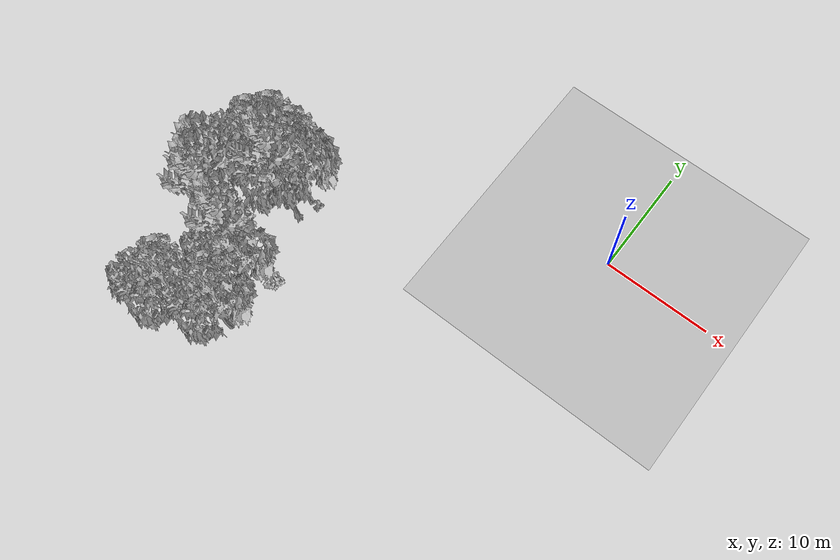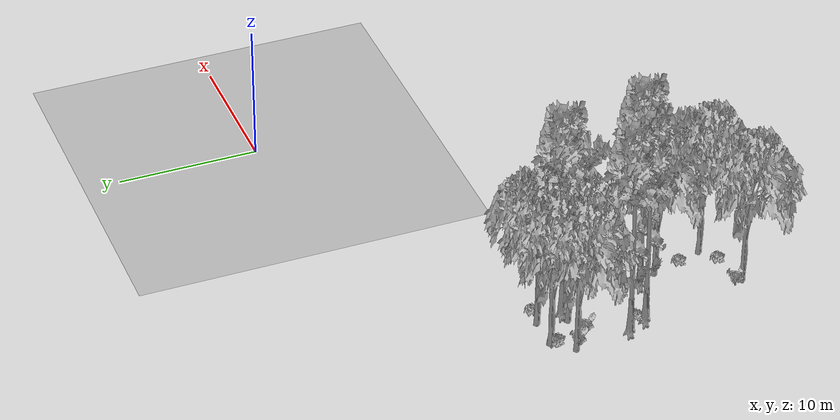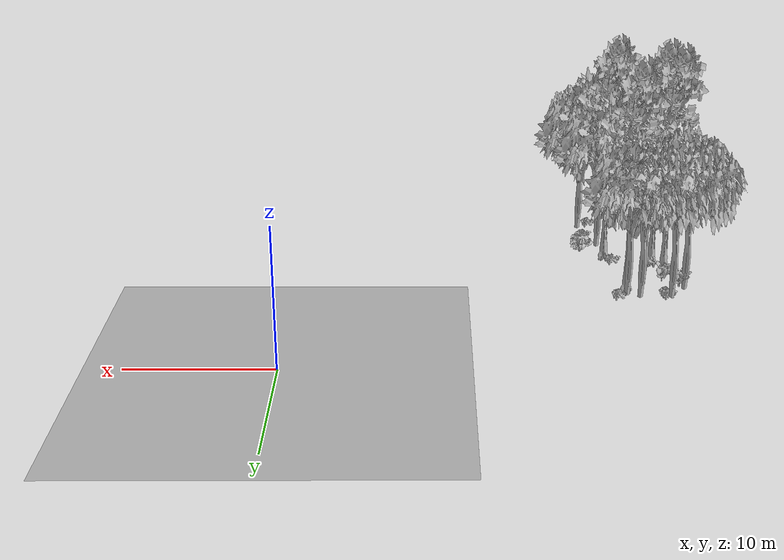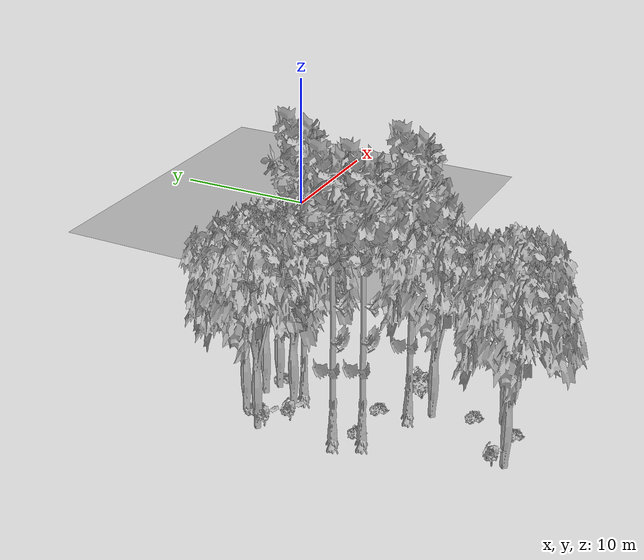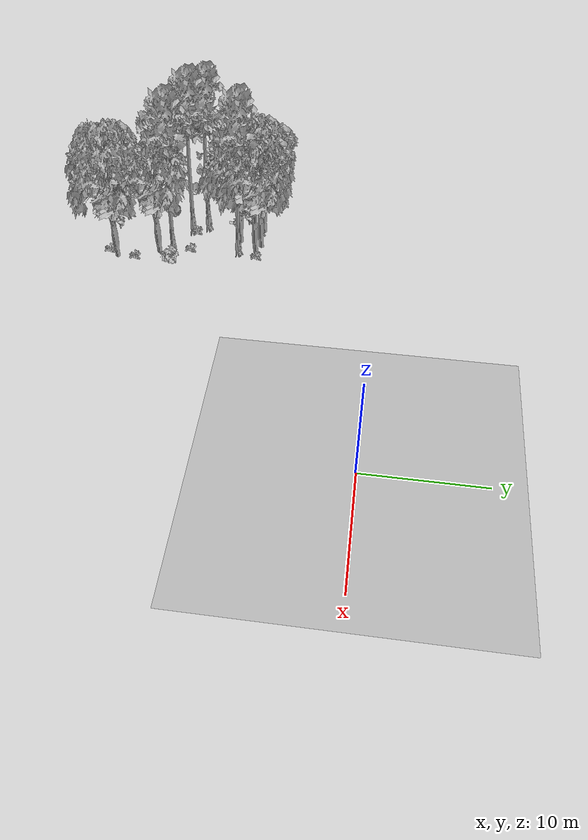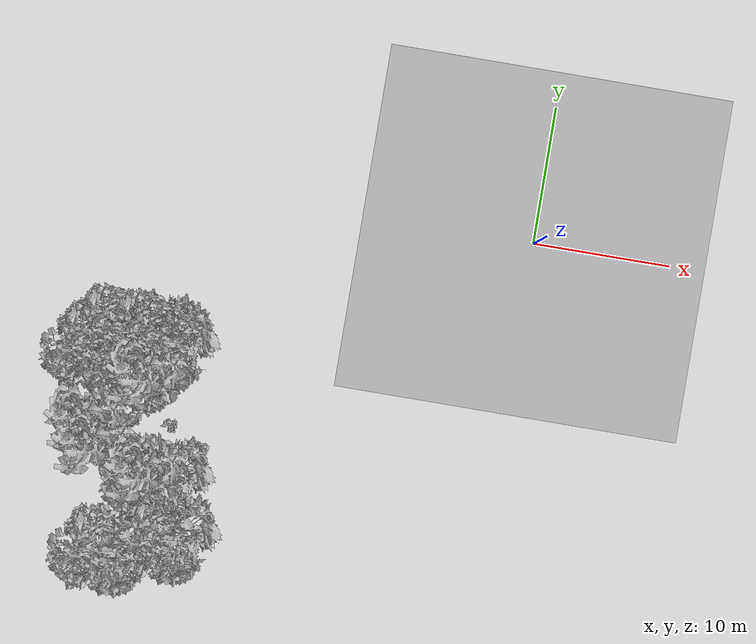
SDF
<sdf version="1.7">
 <world name="default">
  <model name="ground_plane">
   <static>1</static>
   <link name="link">
    <collision name="collision">
     <pose>-50 0 0 0 -0 0</pose>
     <geometry><plane><normal>0 0 1</normal><size>80 80</size></plane></geometry>
     <surface><contact><ode><min_depth>0.01</min_depth><max_vel>0</max_vel></ode></contact></surface>
    </collision>
    <visual name="grass">
     <cast_shadows>0</cast_shadows>
     <geometry>
      <mesh>
       <scale>0.46714285714285714 0.46714285714285714 0.1</scale>
       <uri>file://grass_plane/meshes/grass_plane.dae</uri>
      </mesh>
     </geometry>
    </visual>
   </link>
  </model>
  <model name="Tree 0">
   <static>1</static>
   <pose>-24.326980303188797 -12.943668064030554 0 1.57079 -0 0</pose>
   <link name="link">
    <collision name="collision">
     <geometry><mesh><scale>3.5 5 3.5</scale><uri>model://tree_9/meshes/tree_9.obj</uri></mesh></geometry>
    </collision>
    <visual name="visual">
     <geometry><mesh><scale>3.5 5 3.5</scale><uri>model://tree_9/meshes/tree_9.obj</uri></mesh></geometry>
    </visual>
   </link>
  </model>
  <model name="Tree 183">
   <static>1</static>
   <pose>-27.66117991810856 -16.424481122995978 0 1.57079 -0 0</pose>
   <link name="link">
    <collision name="collision">
     <geometry><mesh><scale>3.5 5 3.5</scale><uri>model://tree_9/meshes/tree_9.obj</uri></mesh></geometry>
    </collision>
    <visual name="visual">
     <geometry><mesh><scale>3.5 5 3.5</scale><uri>model://tree_9/meshes/tree_9.obj</uri></mesh></geometry>
    </visual>
   </link>
  </model>
  <model name="Tree 249">
   <static>1</static>
   <pose>-23.079660132594807 -20.293428503014788 0 1.57079 -0 0</pose>
   <link name="link">
    <collision name="collision">
     <geometry><mesh><scale>3.5 5 3.5</scale><uri>model://tree_2/meshes/tree_2.obj</uri></mesh></geometry>
    </collision>
    <visual name="visual">
     <geometry><mesh><scale>3.5 5 3.5</scale><uri>model://tree_2/meshes/tree_2.obj</uri></mesh></geometry>
    </visual>
   </link>
  </model>
  <model name="Tree 285">
   <static>1</static>
   <pose>-24.22958747521602 -11.290252180075413 0 1.57079 -0 0</pose>
   <link name="link">
    <collision name="collision">
     <geometry><mesh><scale>3.5 5 3.5</scale><uri>model://tree_2/meshes/tree_2.obj</uri></mesh></geometry>
    </collision>
    <visual name="visual">
     <geometry><mesh><scale>3.5 5 3.5</scale><uri>model://tree_2/meshes/tree_2.obj</uri></mesh></geometry>
    </visual>
   </link>
  </model>
  <model name="Tree 349">
   <static>1</static>
   <pose>-26.956420927490726 -17.835473800900026 0 1.57079 -0 0</pose>
   <link name="link">
    <collision name="collision">
     <geometry><mesh><scale>3.5 5 3.5</scale><uri>model://tree_9/meshes/tree_9.obj</uri></mesh></geometry>
    </collision>
    <visual name="visual">
     <geometry><mesh><scale>3.5 5 3.5</scale><uri>model://tree_9/meshes/tree_9.obj</uri></mesh></geometry>
    </visual>
   </link>
  </model>
  <model name="Tree 426">
   <static>1</static>
   <pose>-23.414523349228528 -19.026812883040964 0 1.57079 -0 0</pose>
   <link name="link">
    <collision name="collision">
     <geometry><mesh><scale>3.5 5 3.5</scale><uri>model://tree_9/meshes/tree_9.obj</uri></mesh></geometry>
    </collision>
    <visual name="visual">
     <geometry><mesh><scale>3.5 5 3.5</scale><uri>model://tree_9/meshes/tree_9.obj</uri></mesh></geometry>
    </visual>
   </link>
  </model>
  <model name="Tree 450">
   <static>1</static>
   <pose>-28.55470544526637 -12.248526287693188 0 1.57079 -0 0</pose>
   <link name="link">
    <collision name="collision">
     <geometry><mesh><scale>3.5 5 3.5</scale><uri>model://tree_2/meshes/tree_2.obj</uri></mesh></geometry>
    </collision>
    <visual name="visual">
     <geometry><mesh><scale>3.5 5 3.5</scale><uri>model://tree_2/meshes/tree_2.obj</uri></mesh></geometry>
    </visual>
   </link>
  </model>
  <model name="Tree 469">
   <static>1</static>
   <pose>-25.590883149468432 -12.911564762907446 0 1.57079 -0 0</pose>
   <link name="link">
    <collision name="collision">
     <geometry><mesh><scale>3.5 5 3.5</scale><uri>model://tree_2/meshes/tree_2.obj</uri></mesh></geometry>
    </collision>
    <visual name="visual">
     <geometry><mesh><scale>3.5 5 3.5</scale><uri>model://tree_2/meshes/tree_2.obj</uri></mesh></geometry>
    </visual>
   </link>
  </model>
  <model name="Tree 545">
   <static>1</static>
   <pose>-25.82904256859607 -25.48257691304108 0 1.57079 -0 0</pose>
   <link name="link">
    <collision name="collision">
     <geometry><mesh><scale>3.5 5 3.5</scale><uri>model://tree_2/meshes/tree_2.obj</uri></mesh></geometry>
    </collision>
    <visual name="visual">
     <geometry><mesh><scale>3.5 5 3.5</scale><uri>model://tree_2/meshes/tree_2.obj</uri></mesh></geometry>
    </visual>
   </link>
  </model>
  <model name="Tree 593">
   <static>1</static>
   <pose>-25.132307193439942 -10.878284664768138 0 1.57079 -0 0</pose>
   <link name="link">
    <collision name="collision">
     <geometry><mesh><scale>3.5 5 3.5</scale><uri>model://tree_2/meshes/tree_2.obj</uri></mesh></geometry>
    </collision>
    <visual name="visual">
     <geometry><mesh><scale>3.5 5 3.5</scale><uri>model://tree_2/meshes/tree_2.obj</uri></mesh></geometry>
    </visual>
   </link>
  </model>
  <model name="Tree 604">
   <static>1</static>
   <pose>-27.395836143177526 -10.88998913979416 0 1.57079 -0 0</pose>
   <link name="link">
    <collision name="collision">
     <geometry><mesh><scale>3.5 5 3.5</scale><uri>model://tree_2/meshes/tree_2.obj</uri></mesh></geometry>
    </collision>
    <visual name="visual">
     <geometry><mesh><scale>3.5 5 3.5</scale><uri>model://tree_2/meshes/tree_2.obj</uri></mesh></geometry>
    </visual>
   </link>
  </model>
  <model name="Tree 615">
   <static>1</static>
   <pose>-21.985447732910924 -24.07764157280664 0 1.57079 -0 0</pose>
   <link name="link">
    <collision name="collision">
     <geometry><mesh><scale>3.5 5 3.5</scale><uri>model://tree_2/meshes/tree_2.obj</uri></mesh></geometry>
    </collision>
    <visual name="visual">
     <geometry><mesh><scale>3.5 5 3.5</scale><uri>model://tree_2/meshes/tree_2.obj</uri></mesh></geometry>
    </visual>
   </link>
  </model>
  <model name="Bush 134">
   <static>1</static>
   <pose>-27.029352865184997 -13.493939224404123 0 1.57079 -0 0</pose>
   <link name="link">
    <collision name="collision">
     <geometry><mesh><scale>2 2 2</scale><uri>model://bush_0/meshes/bush_0.obj</uri></mesh></geometry>
     <surface><contact><collide_without_contact>false</collide_without_contact></contact></surface>
    </collision>
    <visual name="visual">
     <geometry><mesh><scale>2 2 2</scale><uri>model://bush_0/meshes/bush_0.obj</uri></mesh></geometry>
    </visual>
   </link>
  </model>
  <model name="Bush 151">
   <static>1</static>
   <pose>-22.22764968526723 -22.504353807985957 0 1.57079 -0 0</pose>
   <link name="link">
    <collision name="collision">
     <geometry><mesh><scale>2 2 2</scale><uri>model://bush_2/meshes/bush_2.obj</uri></mesh></geometry>
     <surface><contact><collide_without_contact>false</collide_without_contact></contact></surface>
    </collision>
    <visual name="visual">
     <geometry><mesh><scale>2 2 2</scale><uri>model://bush_2/meshes/bush_2.obj</uri></mesh></geometry>
    </visual>
   </link>
  </model>
  <model name="Bush 199">
   <static>1</static>
   <pose>-27.17121336567461 -11.243509346347082 0 1.57079 -0 0</pose>
   <link name="link">
    <collision name="collision">
     <geometry><mesh><scale>2 2 2</scale><uri>model://bush_2/meshes/bush_2.obj</uri></mesh></geometry>
     <surface><contact><collide_without_contact>false</collide_without_contact></contact></surface>
    </collision>
    <visual name="visual">
     <geometry><mesh><scale>2 2 2</scale><uri>model://bush_2/meshes/bush_2.obj</uri></mesh></geometry>
    </visual>
   </link>
  </model>
  <model name="Bush 273">
   <static>1</static>
   <pose>-25.93137891299659 -24.8600769681104 0 1.57079 -0 0</pose>
   <link name="link">
    <collision name="collision">
     <geometry><mesh><scale>2 2 2</scale><uri>model://bush_0/meshes/bush_0.obj</uri></mesh></geometry>
     <surface><contact><collide_without_contact>false</collide_without_contact></contact></surface>
    </collision>
    <visual name="visual">
     <geometry><mesh><scale>2 2 2</scale><uri>model://bush_0/meshes/bush_0.obj</uri></mesh></geometry>
    </visual>
   </link>
  </model>
  <model name="Bush 336">
   <static>1</static>
   <pose>-23.91711227910521 -17.479276219900648 0 1.57079 -0 0</pose>
   <link name="link">
    <collision name="collision">
     <geometry><mesh><scale>2 2 2</scale><uri>model://bush_2/meshes/bush_2.obj</uri></mesh></geometry>
     <surface><contact><collide_without_contact>false</collide_without_contact></contact></surface>
    </collision>
    <visual name="visual">
     <geometry><mesh><scale>2 2 2</scale><uri>model://bush_2/meshes/bush_2.obj</uri></mesh></geometry>
    </visual>
   </link>
  </model>
  <model name="Bush 476">
   <static>1</static>
   <pose>-23.581729810752584 -11.159690491038276 0 1.57079 -0 0</pose>
   <link name="link">
    <collision name="collision">
     <geometry><mesh><scale>2 2 2</scale><uri>model://bush_2/meshes/bush_2.obj</uri></mesh></geometry>
     <surface><contact><collide_without_contact>false</collide_without_contact></contact></surface>
    </collision>
    <visual name="visual">
     <geometry><mesh><scale>2 2 2</scale><uri>model://bush_2/meshes/bush_2.obj</uri></mesh></geometry>
    </visual>
   </link>
  </model>
  <model name="Bush 483">
   <static>1</static>
   <pose>-26.57863297316403 -17.368505685327182 0 1.57079 -0 0</pose>
   <link name="link">
    <collision name="collision">
     <geometry><mesh><scale>2 2 2</scale><uri>model://bush_2/meshes/bush_2.obj</uri></mesh></geometry>
     <surface><contact><collide_without_contact>false</collide_without_contact></contact></surface>
    </collision>
    <visual name="visual">
     <geometry><mesh><scale>2 2 2</scale><uri>model://bush_2/meshes/bush_2.obj</uri></mesh></geometry>
    </visual>
   </link>
  </model>
  <model name="Bush 486">
   <static>1</static>
   <pose>-22.87644219922364 -25.072557651317027 0 1.57079 -0 0</pose>
   <link name="link">
    <collision name="collision">
     <geometry><mesh><scale>2 2 2</scale><uri>model://bush_2/meshes/bush_2.obj</uri></mesh></geometry>
     <surface><contact><collide_without_contact>false</collide_without_contact></contact></surface>
    </collision>
    <visual name="visual">
     <geometry><mesh><scale>2 2 2</scale><uri>model://bush_2/meshes/bush_2.obj</uri></mesh></geometry>
    </visual>
   </link>
  </model>
  <model name="Bush 512">
   <static>1</static>
   <pose>-28.148072146927632 -12.497000542261809 0 1.57079 -0 0</pose>
   <link name="link">
    <collision name="collision">
     <geometry><mesh><scale>2 2 2</scale><uri>model://bush_0/meshes/bush_0.obj</uri></mesh></geometry>
     <surface><contact><collide_without_contact>false</collide_without_contact></contact></surface>
    </collision>
    <visual name="visual">
     <geometry><mesh><scale>2 2 2</scale><uri>model://bush_0/meshes/bush_0.obj</uri></mesh></geometry>
    </visual>
   </link>
  </model>
  <model name="Bush 540">
   <static>1</static>
   <pose>-21.557661249269515 -19.08721051891402 0 1.57079 -0 0</pose>
   <link name="link">
    <collision name="collision">
     <geometry><mesh><scale>2 2 2</scale><uri>model://bush_1/meshes/bush_1.obj</uri></mesh></geometry>
     <surface><contact><collide_without_contact>false</collide_without_contact></contact></surface>
    </collision>
    <visual name="visual">
     <geometry><mesh><scale>2 2 2</scale><uri>model://bush_1/meshes/bush_1.obj</uri></mesh></geometry>
    </visual>
   </link>
  </model>
  <model name="Bush 607">
   <static>1</static>
   <pose>-27.06292816697395 -11.538914914676042 0 1.57079 -0 0</pose>
   <link name="link">
    <collision name="collision">
     <geometry><mesh><scale>2 2 2</scale><uri>model://bush_2/meshes/bush_2.obj</uri></mesh></geometry>
     <surface><contact><collide_without_contact>false</collide_without_contact></contact></surface>
    </collision>
    <visual name="visual">
     <geometry><mesh><scale>2 2 2</scale><uri>model://bush_2/meshes/bush_2.obj</uri></mesh></geometry>
    </visual>
   </link>
  </model>
 </world>
</sdf>
